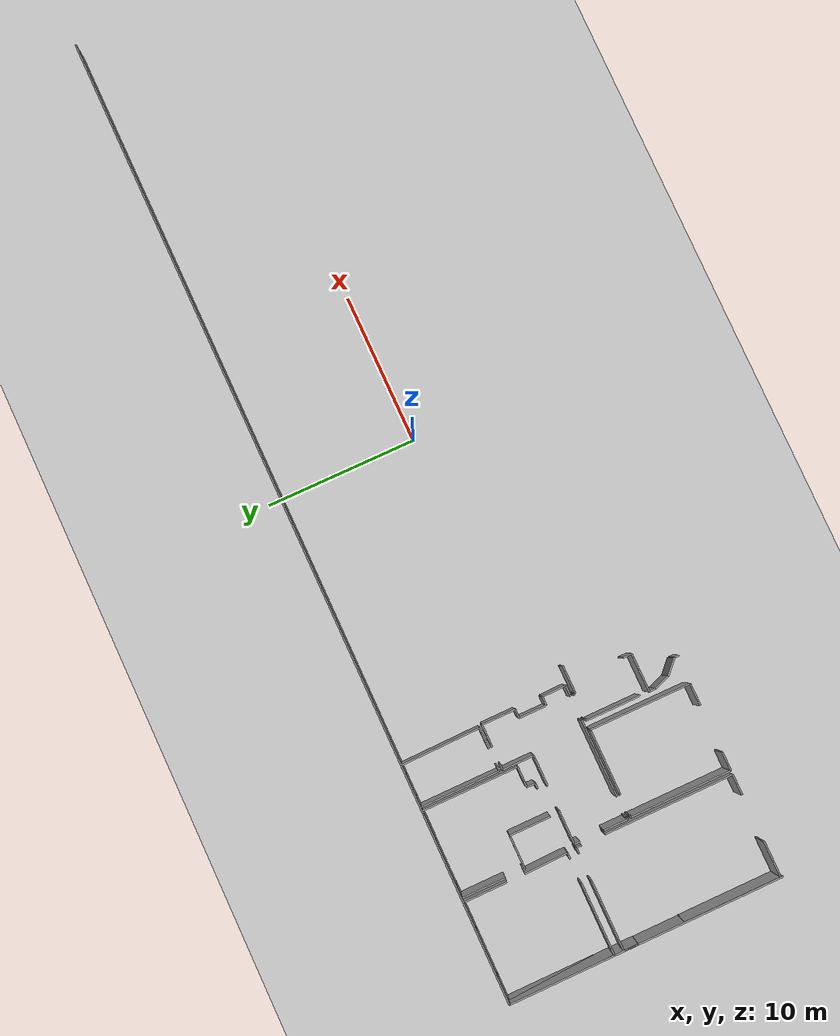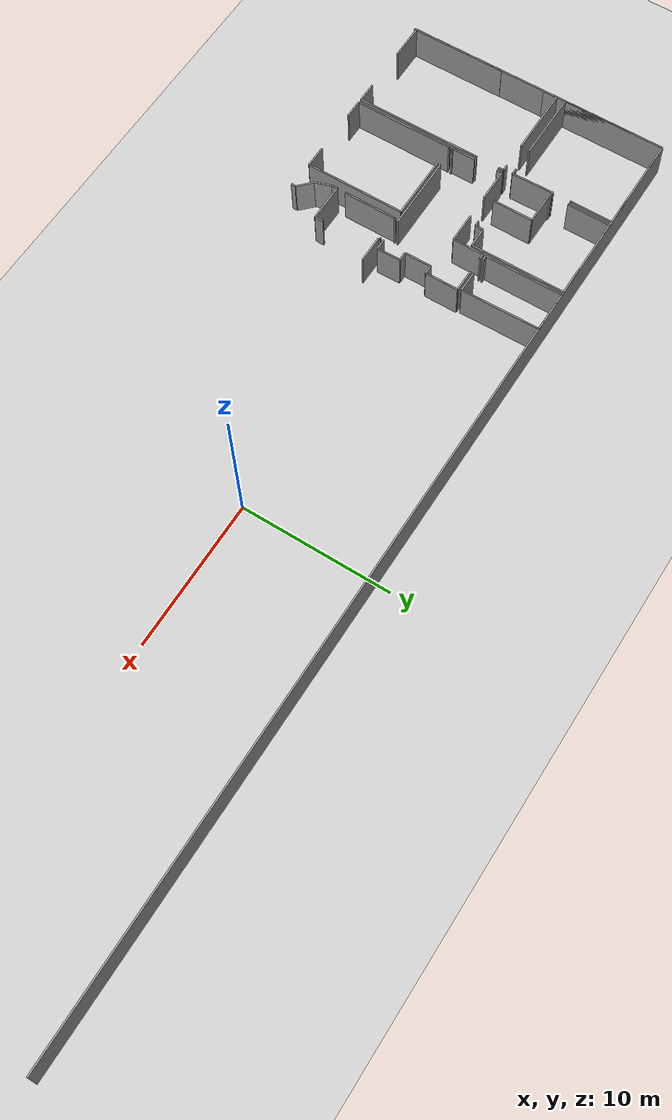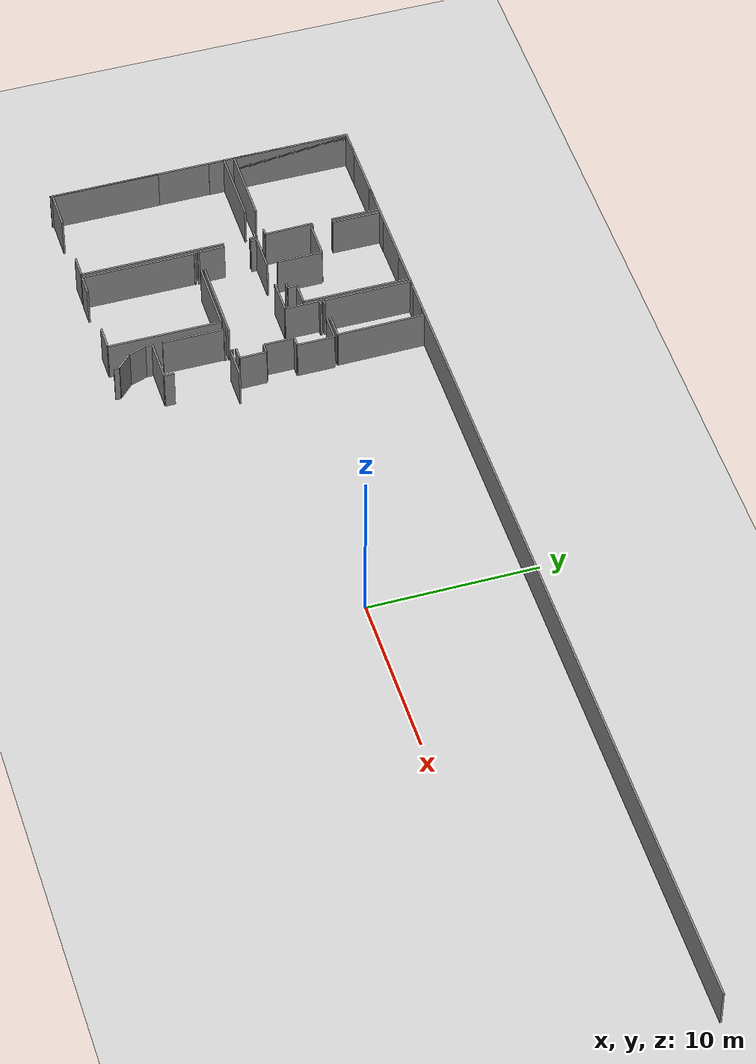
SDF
<sdf version="1.6">
 <world name="default">
  <model name="ground_plane">
   <static>1</static>
   <link name="link">
    <collision name="collision">
     <geometry><plane><normal>0 0 1</normal><size>100 100</size></plane></geometry>
     <surface><friction><ode><mu>100</mu><mu2>50</mu2></ode></friction></surface>
    </collision>
    <visual name="visual">
     <cast_shadows>0</cast_shadows>
     <geometry><plane><normal>0 0 1</normal><size>100 100</size></plane></geometry>
     <material>
      <script><uri>file://media/materials/scripts/gazebo.material</uri><name>Gazebo/Grey</name></script>
     </material>
    </visual>
   </link>
  </model>
  <model name="0510034840_A-40">
   <static>1</static>
   <link name="Wall_0">
    <collision name="Wall_0_Collision">
     <geometry><box><size>0.408471532022 0.1 2.5</size></box></geometry>
     <pose>0.204235766011 0 1.25 0 0 0</pose>
    </collision>
    <visual name="Wall_0_Visual">
     <pose>0.204235766011 0 1.25 0 0 0</pose>
     <geometry><box><size>0.408471532022 0.1 2.5</size></box></geometry>
     <material>
      <script><uri>file://media/materials/scripts/gazebo.material</uri><name>Gazebo/Grey</name></script>
      <ambient>1 1 1 1</ambient>
     </material>
    </visual>
    <pose>6.66679360002 -6.94261977749 0 0 0 3.14159265359</pose>
   </link>
   <link name="Wall_1">
    <collision name="Wall_1_Collision">
     <geometry><box><size>4.6469031435 0.1 2.5</size></box></geometry>
     <pose>2.32345157175 0 1.25 0 0 0</pose>
    </collision>
    <visual name="Wall_1_Visual">
     <pose>2.32345157175 0 1.25 0 0 0</pose>
     <geometry><box><size>4.6469031435 0.1 2.5</size></box></geometry>
     <material>
      <script><uri>file://media/materials/scripts/gazebo.material</uri><name>Gazebo/Grey</name></script>
      <ambient>1 1 1 1</ambient>
     </material>
    </visual>
    <pose>4.6469031435 -6.94261977749 0 0 0 3.14159265359</pose>
   </link>
   <link name="Wall_2">
    <collision name="Wall_2_Collision">
     <geometry><box><size>6.9379232434 0.1 2.5</size></box></geometry>
     <pose>3.4689616217 0 1.25 0 0 0</pose>
    </collision>
    <visual name="Wall_2_Visual">
     <pose>3.4689616217 0 1.25 0 0 0</pose>
     <geometry><box><size>6.9379232434 0.1 2.5</size></box></geometry>
     <material>
      <script><uri>file://media/materials/scripts/gazebo.material</uri><name>Gazebo/Grey</name></script>
      <ambient>1 1 1 1</ambient>
     </material>
    </visual>
    <pose>0.0 -6.94261977749 0 0 0 1.57079632679</pose>
   </link>
   <link name="Wall_3">
    <collision name="Wall_3_Collision">
     <geometry><box><size>1.70877680674 0.1 2.5</size></box></geometry>
     <pose>0.854388403369 0 1.25 0 0 0</pose>
    </collision>
    <visual name="Wall_3_Visual">
     <pose>0.854388403369 0 1.25 0 0 0</pose>
     <geometry><box><size>1.70877680674 0.1 2.5</size></box></geometry>
     <material>
      <script><uri>file://media/materials/scripts/gazebo.material</uri><name>Gazebo/Grey</name></script>
      <ambient>1 1 1 1</ambient>
     </material>
    </visual>
    <pose>0.0 -0.00469653408478 0 0 0 0.0</pose>
   </link>
   <link name="Wall_4">
    <collision name="Wall_4_Collision">
     <geometry><box><size>1.85487709678 0.1 2.5</size></box></geometry>
     <pose>0.92743854839 0 1.25 0 0 0</pose>
    </collision>
    <visual name="Wall_4_Visual">
     <pose>0.92743854839 0 1.25 0 0 0</pose>
     <geometry><box><size>1.85487709678 0.1 2.5</size></box></geometry>
     <material>
      <script><uri>file://media/materials/scripts/gazebo.material</uri><name>Gazebo/Grey</name></script>
      <ambient>1 1 1 1</ambient>
     </material>
    </visual>
    <pose>4.75441569404 -0.00469653408478 0 0 0 0.0</pose>
   </link>
   <link name="Wall_5">
    <collision name="Wall_5_Collision">
     <geometry><box><size>2.89484206317 0.1 2.5</size></box></geometry>
     <pose>1.44742103159 0 1.25 0 0 0</pose>
    </collision>
    <visual name="Wall_5_Visual">
     <pose>1.44742103159 0 1.25 0 0 0</pose>
     <geometry><box><size>2.89484206317 0.1 2.5</size></box></geometry>
     <material>
      <script><uri>file://media/materials/scripts/gazebo.material</uri><name>Gazebo/Grey</name></script>
      <ambient>1 1 1 1</ambient>
     </material>
    </visual>
    <pose>6.60929279082 -0.00469653408478 0 0 0 -1.57079632679</pose>
   </link>
   <link name="Wall_6">
    <collision name="Wall_6_Collision">
     <geometry><box><size>2.86825475186 0.1 2.5</size></box></geometry>
     <pose>1.43412737593 0 1.25 0 0 0</pose>
    </collision>
    <visual name="Wall_6_Visual">
     <pose>1.43412737593 0 1.25 0 0 0</pose>
     <geometry><box><size>2.86825475186 0.1 2.5</size></box></geometry>
     <material>
      <script><uri>file://media/materials/scripts/gazebo.material</uri><name>Gazebo/Grey</name></script>
      <ambient>1 1 1 1</ambient>
     </material>
    </visual>
    <pose>6.60929279082 -4.07494145199 0 0 0 -1.5507476678</pose>
   </link>
   <link name="Wall_7">
    <collision name="Wall_7_Collision">
     <geometry><box><size>0.373184059709 0.1 2.5</size></box></geometry>
     <pose>0.186592029855 0 1.25 0 0 0</pose>
    </collision>
    <visual name="Wall_7_Visual">
     <pose>0.186592029855 0 1.25 0 0 0</pose>
     <geometry><box><size>0.373184059709 0.1 2.5</size></box></geometry>
     <material>
      <script><uri>file://media/materials/scripts/gazebo.material</uri><name>Gazebo/Grey</name></script>
      <ambient>1 1 1 1</ambient>
     </material>
    </visual>
    <pose>11.2253511294 -6.92053337395 0 0 0 3.14159265359</pose>
   </link>
   <link name="Wall_8">
    <collision name="Wall_8_Collision">
     <geometry><box><size>2.704188166 0.1 2.5</size></box></geometry>
     <pose>1.352094083 0 1.25 0 0 0</pose>
    </collision>
    <visual name="Wall_8_Visual">
     <pose>1.352094083 0 1.25 0 0 0</pose>
     <geometry><box><size>2.704188166 0.1 2.5</size></box></geometry>
     <material>
      <script><uri>file://media/materials/scripts/gazebo.material</uri><name>Gazebo/Grey</name></script>
      <ambient>1 1 1 1</ambient>
     </material>
    </visual>
    <pose>9.05085584814 -6.92053337395 0 0 0 1.57079632679</pose>
   </link>
   <link name="Wall_9">
    <collision name="Wall_9_Collision">
     <geometry><box><size>2.1902350171 0.1 2.5</size></box></geometry>
     <pose>1.09511750855 0 1.25 0 0 0</pose>
    </collision>
    <visual name="Wall_9_Visual">
     <pose>1.09511750855 0 1.25 0 0 0</pose>
     <geometry><box><size>2.1902350171 0.1 2.5</size></box></geometry>
     <material>
      <script><uri>file://media/materials/scripts/gazebo.material</uri><name>Gazebo/Grey</name></script>
      <ambient>1 1 1 1</ambient>
     </material>
    </visual>
    <pose>9.05085584814 -4.21634520795 0 0 0 3.14159265359</pose>
   </link>
   <link name="Wall_10">
    <collision name="Wall_10_Collision">
     <geometry><box><size>0.148385090408 0.1 2.5</size></box></geometry>
     <pose>0.0741925452041 0 1.25 0 0 0</pose>
    </collision>
    <visual name="Wall_10_Visual">
     <pose>0.0741925452041 0 1.25 0 0 0</pose>
     <geometry><box><size>0.148385090408 0.1 2.5</size></box></geometry>
     <material>
      <script><uri>file://media/materials/scripts/gazebo.material</uri><name>Gazebo/Grey</name></script>
      <ambient>1 1 1 1</ambient>
     </material>
    </visual>
    <pose>6.86062083103 -4.21634520795 0 0 0 1.57079632679</pose>
   </link>
   <link name="Wall_11">
    <collision name="Wall_11_Collision">
     <geometry><box><size>2.89573059665 0.1 2.5</size></box></geometry>
     <pose>1.44786529833 0 1.25 0 0 0</pose>
    </collision>
    <visual name="Wall_11_Visual">
     <pose>1.44786529833 0 1.25 0 0 0</pose>
     <geometry><box><size>2.89573059665 0.1 2.5</size></box></geometry>
     <material>
      <script><uri>file://media/materials/scripts/gazebo.material</uri><name>Gazebo/Grey</name></script>
      <ambient>1 1 1 1</ambient>
     </material>
    </visual>
    <pose>6.86062083103 -2.91400899957 0 0 0 1.57079632679</pose>
   </link>
   <link name="Wall_12">
    <collision name="Wall_12_Collision">
     <geometry><box><size>0.747510519602 0.1 2.5</size></box></geometry>
     <pose>0.373755259801 0 1.25 0 0 0</pose>
    </collision>
    <visual name="Wall_12_Visual">
     <pose>0.373755259801 0 1.25 0 0 0</pose>
     <geometry><box><size>0.747510519602 0.1 2.5</size></box></geometry>
     <material>
      <script><uri>file://media/materials/scripts/gazebo.material</uri><name>Gazebo/Grey</name></script>
      <ambient>1 1 1 1</ambient>
     </material>
    </visual>
    <pose>6.86062083103 -0.0182784029245 0 0 0 0.0</pose>
   </link>
   <link name="Wall_13">
    <collision name="Wall_13_Collision">
     <geometry><box><size>1.91072777238 0.1 2.5</size></box></geometry>
     <pose>0.955363886192 0 1.25 0 0 0</pose>
    </collision>
    <visual name="Wall_13_Visual">
     <pose>0.955363886192 0 1.25 0 0 0</pose>
     <geometry><box><size>1.91072777238 0.1 2.5</size></box></geometry>
     <material>
      <script><uri>file://media/materials/scripts/gazebo.material</uri><name>Gazebo/Grey</name></script>
      <ambient>1 1 1 1</ambient>
     </material>
    </visual>
    <pose>10.6707793073 -0.0182784029245 0 0 0 0.0</pose>
   </link>
   <link name="Wall_14">
    <collision name="Wall_14_Collision">
     <geometry><box><size>6.35098341616 0.1 2.5</size></box></geometry>
     <pose>3.17549170808 0 1.25 0 0 0</pose>
    </collision>
    <visual name="Wall_14_Visual">
     <pose>3.17549170808 0 1.25 0 0 0</pose>
     <geometry><box><size>6.35098341616 0.1 2.5</size></box></geometry>
     <material>
      <script><uri>file://media/materials/scripts/gazebo.material</uri><name>Gazebo/Grey</name></script>
      <ambient>1 1 1 1</ambient>
     </material>
    </visual>
    <pose>12.5815070797 -0.0182784029245 0 0 0 -1.57079632679</pose>
   </link>
   <link name="Wall_15">
    <collision name="Wall_15_Collision">
     <geometry><box><size>1.33736981398 0.1 2.5</size></box></geometry>
     <pose>0.66868490699 0 1.25 0 0 0</pose>
    </collision>
    <visual name="Wall_15_Visual">
     <pose>0.66868490699 0 1.25 0 0 0</pose>
     <geometry><box><size>1.33736981398 0.1 2.5</size></box></geometry>
     <material>
      <script><uri>file://media/materials/scripts/gazebo.material</uri><name>Gazebo/Grey</name></script>
      <ambient>1 1 1 1</ambient>
     </material>
    </visual>
    <pose>12.5815070797 -6.36926181908 0 0 0 3.14159265359</pose>
   </link>
   <link name="Wall_16">
    <collision name="Wall_16_Collision">
     <geometry><box><size>0.551591557339 0.1 2.5</size></box></geometry>
     <pose>0.275795778669 0 1.25 0 0 0</pose>
    </collision>
    <visual name="Wall_16_Visual">
     <pose>0.275795778669 0 1.25 0 0 0</pose>
     <geometry><box><size>0.551591557339 0.1 2.5</size></box></geometry>
     <material>
      <script><uri>file://media/materials/scripts/gazebo.material</uri><name>Gazebo/Grey</name></script>
      <ambient>1 1 1 1</ambient>
     </material>
    </visual>
    <pose>11.2441372657 -6.36926181908 0 0 0 -1.60486097086</pose>
   </link>
   <link name="Wall_17">
    <collision name="Wall_17_Collision">
     <geometry><box><size>1.34346261495 0.1 2.5</size></box></geometry>
     <pose>0.671731307477 0 1.25 0 0 0</pose>
    </collision>
    <visual name="Wall_17_Visual">
     <pose>0.671731307477 0 1.25 0 0 0</pose>
     <geometry><box><size>1.34346261495 0.1 2.5</size></box></geometry>
     <material>
      <script><uri>file://media/materials/scripts/gazebo.material</uri><name>Gazebo/Grey</name></script>
      <ambient>1 1 1 1</ambient>
     </material>
    </visual>
    <pose>6.74600001269 -18.0086695481 0 0 0 3.14159265359</pose>
   </link>
   <link name="Wall_18">
    <collision name="Wall_18_Collision">
     <geometry><box><size>2.34293584154 0.1 2.5</size></box></geometry>
     <pose>1.17146792077 0 1.25 0 0 0</pose>
    </collision>
    <visual name="Wall_18_Visual">
     <pose>1.17146792077 0 1.25 0 0 0</pose>
     <geometry><box><size>2.34293584154 0.1 2.5</size></box></geometry>
     <material>
      <script><uri>file://media/materials/scripts/gazebo.material</uri><name>Gazebo/Grey</name></script>
      <ambient>1 1 1 1</ambient>
     </material>
    </visual>
    <pose>2.35981797757 -18.0086695481 0 0 0 3.14159265359</pose>
   </link>
   <link name="Wall_19">
    <collision name="Wall_19_Collision">
     <geometry><box><size>6.40746875853 0.1 2.5</size></box></geometry>
     <pose>3.20373437926 0 1.25 0 0 0</pose>
    </collision>
    <visual name="Wall_19_Visual">
     <pose>3.20373437926 0 1.25 0 0 0</pose>
     <geometry><box><size>6.40746875853 0.1 2.5</size></box></geometry>
     <material>
      <script><uri>file://media/materials/scripts/gazebo.material</uri><name>Gazebo/Grey</name></script>
      <ambient>1 1 1 1</ambient>
     </material>
    </visual>
    <pose>0.0168821360345 -18.0086695481 0 0 0 1.57079632679</pose>
   </link>
   <link name="Wall_20">
    <collision name="Wall_20_Collision">
     <geometry><box><size>0.957966019941 0.1 2.5</size></box></geometry>
     <pose>0.478983009971 0 1.25 0 0 0</pose>
    </collision>
    <visual name="Wall_20_Visual">
     <pose>0.478983009971 0 1.25 0 0 0</pose>
     <geometry><box><size>0.957966019941 0.1 2.5</size></box></geometry>
     <material>
      <script><uri>file://media/materials/scripts/gazebo.material</uri><name>Gazebo/Grey</name></script>
      <ambient>1 1 1 1</ambient>
     </material>
    </visual>
    <pose>0.0168821360345 -8.51684722936 0 0 0 1.57079632679</pose>
   </link>
   <link name="Wall_21">
    <collision name="Wall_21_Collision">
     <geometry><box><size>4.52136605675 0.1 2.5</size></box></geometry>
     <pose>2.26068302838 0 1.25 0 0 0</pose>
    </collision>
    <visual name="Wall_21_Visual">
     <pose>2.26068302838 0 1.25 0 0 0</pose>
     <geometry><box><size>4.52136605675 0.1 2.5</size></box></geometry>
     <material>
      <script><uri>file://media/materials/scripts/gazebo.material</uri><name>Gazebo/Grey</name></script>
      <ambient>1 1 1 1</ambient>
     </material>
    </visual>
    <pose>0.0168821360345 -7.55888120942 0 0 0 0.0</pose>
   </link>
   <link name="Wall_22">
    <collision name="Wall_22_Collision">
     <geometry><box><size>0.420022467204 0.1 2.5</size></box></geometry>
     <pose>0.210011233602 0 1.25 0 0 0</pose>
    </collision>
    <visual name="Wall_22_Visual">
     <pose>0.210011233602 0 1.25 0 0 0</pose>
     <geometry><box><size>0.420022467204 0.1 2.5</size></box></geometry>
     <material>
      <script><uri>file://media/materials/scripts/gazebo.material</uri><name>Gazebo/Grey</name></script>
      <ambient>1 1 1 1</ambient>
     </material>
    </visual>
    <pose>6.31404581025 -7.55888120942 0 0 0 0.0</pose>
   </link>
   <link name="Wall_23">
    <collision name="Wall_23_Collision">
     <geometry><box><size>0.35300165648 0.1 2.5</size></box></geometry>
     <pose>0.17650082824 0 1.25 0 0 0</pose>
    </collision>
    <visual name="Wall_23_Visual">
     <pose>0.17650082824 0 1.25 0 0 0</pose>
     <geometry><box><size>0.35300165648 0.1 2.5</size></box></geometry>
     <material>
      <script><uri>file://media/materials/scripts/gazebo.material</uri><name>Gazebo/Grey</name></script>
      <ambient>1 1 1 1</ambient>
     </material>
    </visual>
    <pose>6.73406827745 -7.55888120942 0 0 0 -1.57079632679</pose>
   </link>
   <link name="Wall_24">
    <collision name="Wall_24_Collision">
     <geometry><box><size>8.53386464001 0.1 2.5</size></box></geometry>
     <pose>4.26693232001 0 1.25 0 0 0</pose>
    </collision>
    <visual name="Wall_24_Visual">
     <pose>4.26693232001 0 1.25 0 0 0</pose>
     <geometry><box><size>8.53386464001 0.1 2.5</size></box></geometry>
     <material>
      <script><uri>file://media/materials/scripts/gazebo.material</uri><name>Gazebo/Grey</name></script>
      <ambient>1 1 1 1</ambient>
     </material>
    </visual>
    <pose>6.73406827745 -9.4748132493 0 0 0 -1.56939816317</pose>
   </link>
   <link name="Wall_25">
    <collision name="Wall_25_Collision">
     <geometry><box><size>1.45211756567 0.1 2.5</size></box></geometry>
     <pose>0.726058782836 0 1.25 0 0 0</pose>
    </collision>
    <visual name="Wall_25_Visual">
     <pose>0.726058782836 0 1.25 0 0 0</pose>
     <geometry><box><size>1.45211756567 0.1 2.5</size></box></geometry>
     <material>
      <script><uri>file://media/materials/scripts/gazebo.material</uri><name>Gazebo/Grey</name></script>
      <ambient>1 1 1 1</ambient>
     </material>
    </visual>
    <pose>12.754263374 -18.0183164829 0 0 0 3.14159265359</pose>
   </link>
   <link name="Wall_26">
    <collision name="Wall_26_Collision">
     <geometry><box><size>1.2406465985 0.1 2.5</size></box></geometry>
     <pose>0.620323299252 0 1.25 0 0 0</pose>
    </collision>
    <visual name="Wall_26_Visual">
     <pose>0.620323299252 0 1.25 0 0 0</pose>
     <geometry><box><size>1.2406465985 0.1 2.5</size></box></geometry>
     <material>
      <script><uri>file://media/materials/scripts/gazebo.material</uri><name>Gazebo/Grey</name></script>
      <ambient>1 1 1 1</ambient>
     </material>
    </visual>
    <pose>8.23403971745 -18.0183164829 0 0 0 3.14159265359</pose>
   </link>
   <link name="Wall_27">
    <collision name="Wall_27_Collision">
     <geometry><box><size>6.70487360611 0.1 2.5</size></box></geometry>
     <pose>3.35243680306 0 1.25 0 0 0</pose>
    </collision>
    <visual name="Wall_27_Visual">
     <pose>3.35243680306 0 1.25 0 0 0</pose>
     <geometry><box><size>6.70487360611 0.1 2.5</size></box></geometry>
     <material>
      <script><uri>file://media/materials/scripts/gazebo.material</uri><name>Gazebo/Grey</name></script>
      <ambient>1 1 1 1</ambient>
     </material>
    </visual>
    <pose>6.99339311894 -18.0183164829 0 0 0 1.57079632679</pose>
   </link>
   <link name="Wall_28">
    <collision name="Wall_28_Collision">
     <geometry><box><size>0.0878378807207 0.1 2.5</size></box></geometry>
     <pose>0.0439189403604 0 1.25 0 0 0</pose>
    </collision>
    <visual name="Wall_28_Visual">
     <pose>0.0439189403604 0 1.25 0 0 0</pose>
     <geometry><box><size>0.0878378807207 0.1 2.5</size></box></geometry>
     <material>
      <script><uri>file://media/materials/scripts/gazebo.material</uri><name>Gazebo/Grey</name></script>
      <ambient>1 1 1 1</ambient>
     </material>
    </visual>
    <pose>6.99339311894 -11.3134428768 0 0 0 0.0</pose>
   </link>
   <link name="Wall_29">
    <collision name="Wall_29_Collision">
     <geometry><box><size>4.3191612244 0.1 2.5</size></box></geometry>
     <pose>2.1595806122 0 1.25 0 0 0</pose>
    </collision>
    <visual name="Wall_29_Visual">
     <pose>2.1595806122 0 1.25 0 0 0</pose>
     <geometry><box><size>4.3191612244 0.1 2.5</size></box></geometry>
     <material>
      <script><uri>file://media/materials/scripts/gazebo.material</uri><name>Gazebo/Grey</name></script>
      <ambient>1 1 1 1</ambient>
     </material>
    </visual>
    <pose>8.44474908449 -11.3134428768 0 0 0 0.0</pose>
   </link>
   <link name="Wall_30">
    <collision name="Wall_30_Collision">
     <geometry><box><size>6.70488054609 0.1 2.5</size></box></geometry>
     <pose>3.35244027304 0 1.25 0 0 0</pose>
    </collision>
    <visual name="Wall_30_Visual">
     <pose>3.35244027304 0 1.25 0 0 0</pose>
     <geometry><box><size>6.70488054609 0.1 2.5</size></box></geometry>
     <material>
      <script><uri>file://media/materials/scripts/gazebo.material</uri><name>Gazebo/Grey</name></script>
      <ambient>1 1 1 1</ambient>
     </material>
    </visual>
    <pose>12.7639103089 -11.3134428768 0 0 0 -1.57223512024</pose>
   </link>
   <link name="Wall_31">
    <collision name="Wall_31_Collision">
     <geometry><box><size>0.741671585334 0.1 2.5</size></box></geometry>
     <pose>0.370835792667 0 1.25 0 0 0</pose>
    </collision>
    <visual name="Wall_31_Visual">
     <pose>0.370835792667 0 1.25 0 0 0</pose>
     <geometry><box><size>0.741671585334 0.1 2.5</size></box></geometry>
     <material>
      <script><uri>file://media/materials/scripts/gazebo.material</uri><name>Gazebo/Grey</name></script>
      <ambient>1 1 1 1</ambient>
     </material>
    </visual>
    <pose>15.8059950623 -11.0928327082 0 0 0 3.14159265359</pose>
   </link>
   <link name="Wall_32">
    <collision name="Wall_32_Collision">
     <geometry><box><size>5.05715174248 0.1 2.5</size></box></geometry>
     <pose>2.52857587124 0 1.25 0 0 0</pose>
    </collision>
    <visual name="Wall_32_Visual">
     <pose>2.52857587124 0 1.25 0 0 0</pose>
     <geometry><box><size>5.05715174248 0.1 2.5</size></box></geometry>
     <material>
      <script><uri>file://media/materials/scripts/gazebo.material</uri><name>Gazebo/Grey</name></script>
      <ambient>1 1 1 1</ambient>
     </material>
    </visual>
    <pose>13.5057088276 -11.0928327082 0 0 0 3.14159265359</pose>
   </link>
   <link name="Wall_33">
    <collision name="Wall_33_Collision">
     <geometry><box><size>0.126933353643 0.1 2.5</size></box></geometry>
     <pose>0.0634666768213 0 1.25 0 0 0</pose>
    </collision>
    <visual name="Wall_33_Visual">
     <pose>0.0634666768213 0 1.25 0 0 0</pose>
     <geometry><box><size>0.126933353643 0.1 2.5</size></box></geometry>
     <material>
      <script><uri>file://media/materials/scripts/gazebo.material</uri><name>Gazebo/Grey</name></script>
      <ambient>1 1 1 1</ambient>
     </material>
    </visual>
    <pose>7.08288113326 -11.0928327082 0 0 0 3.14159265359</pose>
   </link>
   <link name="Wall_34">
    <collision name="Wall_34_Collision">
     <geometry><box><size>1.58831705413 0.1 2.5</size></box></geometry>
     <pose>0.794158527065 0 1.25 0 0 0</pose>
    </collision>
    <visual name="Wall_34_Visual">
     <pose>0.794158527065 0 1.25 0 0 0</pose>
     <geometry><box><size>1.58831705413 0.1 2.5</size></box></geometry>
     <material>
      <script><uri>file://media/materials/scripts/gazebo.material</uri><name>Gazebo/Grey</name></script>
      <ambient>1 1 1 1</ambient>
     </material>
    </visual>
    <pose>6.95594777962 -11.0928327082 0 0 0 1.57079632679</pose>
   </link>
   <link name="Wall_35">
    <collision name="Wall_35_Collision">
     <geometry><box><size>0.374326459892 0.1 2.5</size></box></geometry>
     <pose>0.187163229946 0 1.25 0 0 0</pose>
    </collision>
    <visual name="Wall_35_Visual">
     <pose>0.187163229946 0 1.25 0 0 0</pose>
     <geometry><box><size>0.374326459892 0.1 2.5</size></box></geometry>
     <material>
      <script><uri>file://media/materials/scripts/gazebo.material</uri><name>Gazebo/Grey</name></script>
      <ambient>1 1 1 1</ambient>
     </material>
    </visual>
    <pose>6.95594777962 -7.91162899919 0 0 0 1.57079632679</pose>
   </link>
   <link name="Wall_36">
    <collision name="Wall_36_Collision">
     <geometry><box><size>2.19912035186 0.1 2.5</size></box></geometry>
     <pose>1.09956017593 0 1.25 0 0 0</pose>
    </collision>
    <visual name="Wall_36_Visual">
     <pose>1.09956017593 0 1.25 0 0 0</pose>
     <geometry><box><size>2.19912035186 0.1 2.5</size></box></geometry>
     <material>
      <script><uri>file://media/materials/scripts/gazebo.material</uri><name>Gazebo/Grey</name></script>
      <ambient>1 1 1 1</ambient>
     </material>
    </visual>
    <pose>6.95594777962 -7.5373025393 0 0 0 0.0</pose>
   </link>
   <link name="Wall_37">
    <collision name="Wall_37_Collision">
     <geometry><box><size>2.02674485761 0.1 2.5</size></box></geometry>
     <pose>1.01337242881 0 1.25 0 0 0</pose>
    </collision>
    <visual name="Wall_37_Visual">
     <pose>1.01337242881 0 1.25 0 0 0</pose>
     <geometry><box><size>2.02674485761 0.1 2.5</size></box></geometry>
     <material>
      <script><uri>file://media/materials/scripts/gazebo.material</uri><name>Gazebo/Grey</name></script>
      <ambient>1 1 1 1</ambient>
     </material>
    </visual>
    <pose>10.7617905219 -7.5373025393 0 0 0 0.0</pose>
   </link>
   <link name="Wall_38">
    <collision name="Wall_38_Collision">
     <geometry><box><size>2.06863286431 0.1 2.5</size></box></geometry>
     <pose>1.03431643216 0 1.25 0 0 0</pose>
    </collision>
    <visual name="Wall_38_Visual">
     <pose>1.03431643216 0 1.25 0 0 0</pose>
     <geometry><box><size>2.06863286431 0.1 2.5</size></box></geometry>
     <material>
      <script><uri>file://media/materials/scripts/gazebo.material</uri><name>Gazebo/Grey</name></script>
      <ambient>1 1 1 1</ambient>
     </material>
    </visual>
    <pose>12.7885353795 -7.5373025393 0 0 0 1.57079632679</pose>
   </link>
   <link name="Wall_39">
    <collision name="Wall_39_Collision">
     <geometry><box><size>0.33383472008 0.1 2.5</size></box></geometry>
     <pose>0.16691736004 0 1.25 0 0 0</pose>
    </collision>
    <visual name="Wall_39_Visual">
     <pose>0.16691736004 0 1.25 0 0 0</pose>
     <geometry><box><size>0.33383472008 0.1 2.5</size></box></geometry>
     <material>
      <script><uri>file://media/materials/scripts/gazebo.material</uri><name>Gazebo/Grey</name></script>
      <ambient>1 1 1 1</ambient>
     </material>
    </visual>
    <pose>12.7885353795 -5.46866967499 0 0 0 0.0</pose>
   </link>
   <link name="Wall_40">
    <collision name="Wall_40_Collision">
     <geometry><box><size>1.50225624036 0.1 2.5</size></box></geometry>
     <pose>0.75112812018 0 1.25 0 0 0</pose>
    </collision>
    <visual name="Wall_40_Visual">
     <pose>0.75112812018 0 1.25 0 0 0</pose>
     <geometry><box><size>1.50225624036 0.1 2.5</size></box></geometry>
     <material>
      <script><uri>file://media/materials/scripts/gazebo.material</uri><name>Gazebo/Grey</name></script>
      <ambient>1 1 1 1</ambient>
     </material>
    </visual>
    <pose>14.2657857492 -5.46866967499 0 0 0 0.0</pose>
   </link>
   <link name="Wall_41">
    <collision name="Wall_41_Collision">
     <geometry><box><size>2.22450702259 0.1 2.5</size></box></geometry>
     <pose>1.11225351129 0 1.25 0 0 0</pose>
    </collision>
    <visual name="Wall_41_Visual">
     <pose>1.11225351129 0 1.25 0 0 0</pose>
     <geometry><box><size>2.22450702259 0.1 2.5</size></box></geometry>
     <material>
      <script><uri>file://media/materials/scripts/gazebo.material</uri><name>Gazebo/Grey</name></script>
      <ambient>1 1 1 1</ambient>
     </material>
    </visual>
    <pose>15.7680419896 -5.46866967499 0 0 0 -1.57079632679</pose>
   </link>
   <link name="Wall_42">
    <collision name="Wall_42_Collision">
     <geometry><box><size>0.569169157734 0.1 2.5</size></box></geometry>
     <pose>0.284584578867 0 1.25 0 0 0</pose>
    </collision>
    <visual name="Wall_42_Visual">
     <pose>0.284584578867 0 1.25 0 0 0</pose>
     <geometry><box><size>0.569169157734 0.1 2.5</size></box></geometry>
     <material>
      <script><uri>file://media/materials/scripts/gazebo.material</uri><name>Gazebo/Grey</name></script>
      <ambient>1 1 1 1</ambient>
     </material>
    </visual>
    <pose>15.7680419896 -7.69317669757 0 0 0 3.14159265359</pose>
   </link>
   <link name="Wall_43">
    <collision name="Wall_43_Collision">
     <geometry><box><size>1.82123975807 0.1 2.5</size></box></geometry>
     <pose>0.910619879033 0 1.25 0 0 0</pose>
    </collision>
    <visual name="Wall_43_Visual">
     <pose>0.910619879033 0 1.25 0 0 0</pose>
     <geometry><box><size>1.82123975807 0.1 2.5</size></box></geometry>
     <material>
      <script><uri>file://media/materials/scripts/gazebo.material</uri><name>Gazebo/Grey</name></script>
      <ambient>1 1 1 1</ambient>
     </material>
    </visual>
    <pose>15.1988728318 -7.69317669757 0 0 0 -1.57079632679</pose>
   </link>
   <link name="Wall_44">
    <collision name="Wall_44_Collision">
     <geometry><box><size>0.585035826939 0.1 2.5</size></box></geometry>
     <pose>0.29251791347 0 1.25 0 0 0</pose>
    </collision>
    <visual name="Wall_44_Visual">
     <pose>0.29251791347 0 1.25 0 0 0</pose>
     <geometry><box><size>0.585035826939 0.1 2.5</size></box></geometry>
     <material>
      <script><uri>file://media/materials/scripts/gazebo.material</uri><name>Gazebo/Grey</name></script>
      <ambient>1 1 1 1</ambient>
     </material>
    </visual>
    <pose>15.1988728318 -9.51441645564 0 0 0 0.0</pose>
   </link>
   <link name="Wall_45">
    <collision name="Wall_45_Collision">
     <geometry><box><size>1.57857076988 0.1 2.5</size></box></geometry>
     <pose>0.789285384941 0 1.25 0 0 0</pose>
    </collision>
    <visual name="Wall_45_Visual">
     <pose>0.789285384941 0 1.25 0 0 0</pose>
     <geometry><box><size>1.57857076988 0.1 2.5</size></box></geometry>
     <material>
      <script><uri>file://media/materials/scripts/gazebo.material</uri><name>Gazebo/Grey</name></script>
      <ambient>1 1 1 1</ambient>
     </material>
    </visual>
    <pose>15.7839086588 -9.51441645564 0 0 0 -1.55680447757</pose>
   </link>
   <link name="Wall_46">
    <collision name="Wall_46_Collision">
     <geometry><box><size>1.38535062166 0.1 2.5</size></box></geometry>
     <pose>0.692675310828 0 1.25 0 0 0</pose>
    </collision>
    <visual name="Wall_46_Visual">
     <pose>0.692675310828 0 1.25 0 0 0</pose>
     <geometry><box><size>1.38535062166 0.1 2.5</size></box></geometry>
     <material>
      <script><uri>file://media/materials/scripts/gazebo.material</uri><name>Gazebo/Grey</name></script>
      <ambient>1 1 1 1</ambient>
     </material>
    </visual>
    <pose>15.6595139722 -5.25174057361 0 0 0 3.14159265359</pose>
   </link>
   <link name="Wall_47">
    <collision name="Wall_47_Collision">
     <geometry><box><size>0.326345652215 0.1 2.5</size></box></geometry>
     <pose>0.163172826108 0 1.25 0 0 0</pose>
    </collision>
    <visual name="Wall_47_Visual">
     <pose>0.163172826108 0 1.25 0 0 0</pose>
     <geometry><box><size>0.326345652215 0.1 2.5</size></box></geometry>
     <material>
      <script><uri>file://media/materials/scripts/gazebo.material</uri><name>Gazebo/Grey</name></script>
      <ambient>1 1 1 1</ambient>
     </material>
    </visual>
    <pose>13.1285898339 -5.25174057361 0 0 0 3.14159265359</pose>
   </link>
   <link name="Wall_48">
    <collision name="Wall_48_Collision">
     <geometry><box><size>5.247932573 0.1 2.5</size></box></geometry>
     <pose>2.6239662865 0 1.25 0 0 0</pose>
    </collision>
    <visual name="Wall_48_Visual">
     <pose>2.6239662865 0 1.25 0 0 0</pose>
     <geometry><box><size>5.247932573 0.1 2.5</size></box></geometry>
     <material>
      <script><uri>file://media/materials/scripts/gazebo.material</uri><name>Gazebo/Grey</name></script>
      <ambient>1 1 1 1</ambient>
     </material>
    </visual>
    <pose>12.8022441817 -5.25174057361 0 0 0 1.57079632679</pose>
   </link>
   <link name="Wall_49">
    <collision name="Wall_49_Collision">
     <geometry><box><size>0.677189441684 0.1 2.5</size></box></geometry>
     <pose>0.338594720842 0 1.25 0 0 0</pose>
    </collision>
    <visual name="Wall_49_Visual">
     <pose>0.338594720842 0 1.25 0 0 0</pose>
     <geometry><box><size>0.677189441684 0.1 2.5</size></box></geometry>
     <material>
      <script><uri>file://media/materials/scripts/gazebo.material</uri><name>Gazebo/Grey</name></script>
      <ambient>1 1 1 1</ambient>
     </material>
    </visual>
    <pose>12.8022441817 -0.00380800060928 0 0 0 0.0</pose>
   </link>
   <link name="Wall_50">
    <collision name="Wall_50_Collision">
     <geometry><box><size>0.577419825721 0.1 2.5</size></box></geometry>
     <pose>0.28870991286 0 1.25 0 0 0</pose>
    </collision>
    <visual name="Wall_50_Visual">
     <pose>0.28870991286 0 1.25 0 0 0</pose>
     <geometry><box><size>0.577419825721 0.1 2.5</size></box></geometry>
     <material>
      <script><uri>file://media/materials/scripts/gazebo.material</uri><name>Gazebo/Grey</name></script>
      <ambient>1 1 1 1</ambient>
     </material>
    </visual>
    <pose>15.010122935 -0.00380800060928 0 0 0 0.0</pose>
   </link>
   <link name="Wall_51">
    <collision name="Wall_51_Collision">
     <geometry><box><size>5.24842606369 0.1 2.5</size></box></geometry>
     <pose>2.62421303185 0 1.25 0 0 0</pose>
    </collision>
    <visual name="Wall_51_Visual">
     <pose>2.62421303185 0 1.25 0 0 0</pose>
     <geometry><box><size>5.24842606369 0.1 2.5</size></box></geometry>
     <material>
      <script><uri>file://media/materials/scripts/gazebo.material</uri><name>Gazebo/Grey</name></script>
      <ambient>1 1 1 1</ambient>
     </material>
    </visual>
    <pose>15.5875427607 -0.00380800060928 0 0 0 -1.5570829837</pose>
   </link>
   <link name="Wall_53">
    <collision name="Wall_53_Collision">
     <geometry><box><size>0.304766982096 0.1 2.5</size></box></geometry>
     <pose>0.152383491048 0 1.25 0 0 0</pose>
    </collision>
    <visual name="Wall_53_Visual">
     <pose>0.152383491048 0 1.25 0 0 0</pose>
     <geometry><box><size>0.304766982096 0.1 2.5</size></box></geometry>
     <material>
      <script><uri>file://media/materials/scripts/gazebo.material</uri><name>Gazebo/Grey</name></script>
      <ambient>1 1 1 1</ambient>
     </material>
    </visual>
    <pose>14.5752492654 -18.1401725024 0 0 0 1.57079632679</pose>
   </link>
   <link name="Wall_54">
    <collision name="Wall_54_Collision">
     <geometry><box><size>1.1804613671 0.1 2.5</size></box></geometry>
     <pose>0.590230683552 0 1.25 0 0 0</pose>
    </collision>
    <visual name="Wall_54_Visual">
     <pose>0.590230683552 0 1.25 0 0 0</pose>
     <geometry><box><size>1.1804613671 0.1 2.5</size></box></geometry>
     <material>
      <script><uri>file://media/materials/scripts/gazebo.material</uri><name>Gazebo/Grey</name></script>
      <ambient>1 1 1 1</ambient>
     </material>
    </visual>
    <pose>14.5752492654 -17.8354055203 0 0 0 2.37353115612</pose>
   </link>
   <link name="Wall_55">
    <collision name="Wall_55_Collision">
     <geometry><box><size>1.10183731209 0.1 2.5</size></box></geometry>
     <pose>0.550918656043 0 1.25 0 0 0</pose>
    </collision>
    <visual name="Wall_55_Visual">
     <pose>0.550918656043 0 1.25 0 0 0</pose>
     <geometry><box><size>1.10183731209 0.1 2.5</size></box></geometry>
     <material>
      <script><uri>file://media/materials/scripts/gazebo.material</uri><name>Gazebo/Grey</name></script>
      <ambient>1 1 1 1</ambient>
     </material>
    </visual>
    <pose>13.7261920629 -17.0152891224 0 0 0 1.91338630673</pose>
   </link>
   <link name="Wall_56">
    <collision name="Wall_56_Collision">
     <geometry><box><size>0.420911000679 0.1 2.5</size></box></geometry>
     <pose>0.21045550034 0 1.25 0 0 0</pose>
    </collision>
    <visual name="Wall_56_Visual">
     <pose>0.21045550034 0 1.25 0 0 0</pose>
     <geometry><box><size>0.420911000679 0.1 2.5</size></box></geometry>
     <material>
      <script><uri>file://media/materials/scripts/gazebo.material</uri><name>Gazebo/Grey</name></script>
      <ambient>1 1 1 1</ambient>
     </material>
    </visual>
    <pose>13.3560544036 -15.9774820231 0 0 0 1.57079632679</pose>
   </link>
   <link name="Wall_57">
    <collision name="Wall_57_Collision">
     <geometry><box><size>2.51835773627 0.1 2.5</size></box></geometry>
     <pose>1.25917886814 0 1.25 0 0 0</pose>
    </collision>
    <visual name="Wall_57_Visual">
     <pose>1.25917886814 0 1.25 0 0 0</pose>
     <geometry><box><size>2.51835773627 0.1 2.5</size></box></geometry>
     <material>
      <script><uri>file://media/materials/scripts/gazebo.material</uri><name>Gazebo/Grey</name></script>
      <ambient>1 1 1 1</ambient>
     </material>
    </visual>
    <pose>13.3560544036 -15.5565710224 0 0 0 0.0</pose>
   </link>
   <link name="Wall_58">
    <collision name="Wall_58_Collision">
     <geometry><box><size>0.589097694256 0.1 2.5</size></box></geometry>
     <pose>0.294548847128 0 1.25 0 0 0</pose>
    </collision>
    <visual name="Wall_58_Visual">
     <pose>0.294548847128 0 1.25 0 0 0</pose>
     <geometry><box><size>0.589097694256 0.1 2.5</size></box></geometry>
     <material>
      <script><uri>file://media/materials/scripts/gazebo.material</uri><name>Gazebo/Grey</name></script>
      <ambient>1 1 1 1</ambient>
     </material>
    </visual>
    <pose>15.8744121399 -15.5565710224 0 0 0 1.57079632679</pose>
   </link>
   <link name="Wall_60">
    <collision name="Wall_60_Collision">
     <geometry><box><size>3.64768378363 0.1 2.5</size></box></geometry>
     <pose>1.82384189181 0 1.25 0 0 0</pose>
    </collision>
    <visual name="Wall_60_Visual">
     <pose>1.82384189181 0 1.25 0 0 0</pose>
     <geometry><box><size>3.64768378363 0.1 2.5</size></box></geometry>
     <material>
      <script><uri>file://media/materials/scripts/gazebo.material</uri><name>Gazebo/Grey</name></script>
      <ambient>1 1 1 1</ambient>
     </material>
    </visual>
    <pose>13.3667168053 -14.9674733281 0 0 0 1.57079632679</pose>
   </link>
   <link name="Wall_61">
    <collision name="Wall_61_Collision">
     <geometry><box><size>0.11360535151 0.1 2.5</size></box></geometry>
     <pose>0.0568026757551 0 1.25 0 0 0</pose>
    </collision>
    <visual name="Wall_61_Visual">
     <pose>0.0568026757551 0 1.25 0 0 0</pose>
     <geometry><box><size>0.11360535151 0.1 2.5</size></box></geometry>
     <material>
      <script><uri>file://media/materials/scripts/gazebo.material</uri><name>Gazebo/Grey</name></script>
      <ambient>1 1 1 1</ambient>
     </material>
    </visual>
    <pose>13.3667168053 -11.3197895445 0 0 0 0.0</pose>
   </link>
   <link name="Wall_62">
    <collision name="Wall_62_Collision">
     <geometry><box><size>0.108781884072 0.1 2.5</size></box></geometry>
     <pose>0.0543909420359 0 1.25 0 0 0</pose>
    </collision>
    <visual name="Wall_62_Visual">
     <pose>0.0543909420359 0 1.25 0 0 0</pose>
     <geometry><box><size>0.108781884072 0.1 2.5</size></box></geometry>
     <material>
      <script><uri>file://media/materials/scripts/gazebo.material</uri><name>Gazebo/Grey</name></script>
      <ambient>1 1 1 1</ambient>
     </material>
    </visual>
    <pose>15.0333517387 -11.3197895445 0 0 0 0.0</pose>
   </link>
   <link name="Wall_63">
    <collision name="Wall_63_Collision">
     <geometry><box><size>0.10802028395 0.1 2.5</size></box></geometry>
     <pose>0.054010141975 0 1.25 0 0 0</pose>
    </collision>
    <visual name="Wall_63_Visual">
     <pose>0.054010141975 0 1.25 0 0 0</pose>
     <geometry><box><size>0.10802028395 0.1 2.5</size></box></geometry>
     <material>
      <script><uri>file://media/materials/scripts/gazebo.material</uri><name>Gazebo/Grey</name></script>
      <ambient>1 1 1 1</ambient>
     </material>
    </visual>
    <pose>15.1421336227 -11.3197895445 0 0 0 -1.57079632679</pose>
   </link>
   <link name="Wall_64">
    <collision name="Wall_64_Collision">
     <geometry><box><size>1.83875656087 0.1 2.5</size></box></geometry>
     <pose>0.919378280434 0 1.25 0 0 0</pose>
    </collision>
    <visual name="Wall_64_Visual">
     <pose>0.919378280434 0 1.25 0 0 0</pose>
     <geometry><box><size>1.83875656087 0.1 2.5</size></box></geometry>
     <material>
      <script><uri>file://media/materials/scripts/gazebo.material</uri><name>Gazebo/Grey</name></script>
      <ambient>1 1 1 1</ambient>
     </material>
    </visual>
    <pose>15.1421336227 -11.4278098284 0 0 0 0.0</pose>
   </link>
   <link name="Wall_256">
    <collision name="Wall_256_Collision">
     <geometry><box><size>18.1569277051 0.1 2.5</size></box></geometry>
     <pose>9.07846385255 0 1.25 0 0 0</pose>
    </collision>
    <visual name="Wall_256_Visual">
     <pose>9.07846385255 0 1.25 0 0 0</pose>
     <geometry><box><size>18.1569277051 0.1 2.5</size></box></geometry>
     <material>
      <script><uri>file://media/materials/scripts/gazebo.material</uri><name>Gazebo/Grey</name></script>
      <ambient>1 1 1 1</ambient>
     </material>
    </visual>
    <pose>0.0 -18.1569277051 0 0 0 1.57079632679</pose>
   </link>
   <link name="Wall_257">
    <collision name="Wall_257_Collision">
     <geometry><box><size>65.0119634686 0.1 2.5</size></box></geometry>
     <pose>32.5059817343 0 1.25 0 0 0</pose>
    </collision>
    <visual name="Wall_257_Visual">
     <pose>32.5059817343 0 1.25 0 0 0</pose>
     <geometry><box><size>65.0119634686 0.1 2.5</size></box></geometry>
     <material>
      <script><uri>file://media/materials/scripts/gazebo.material</uri><name>Gazebo/Grey</name></script>
      <ambient>1 1 1 1</ambient>
     </material>
    </visual>
   </link>
   <pose>-33.6 9.05692770511 0 0 0 0</pose>
  </model>
 </world>
</sdf>
